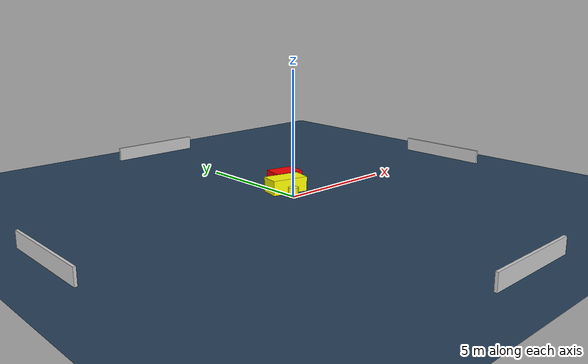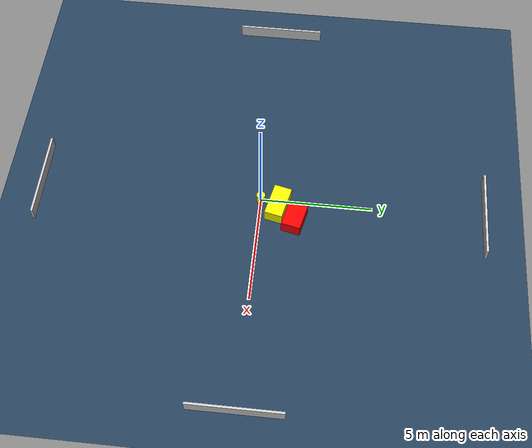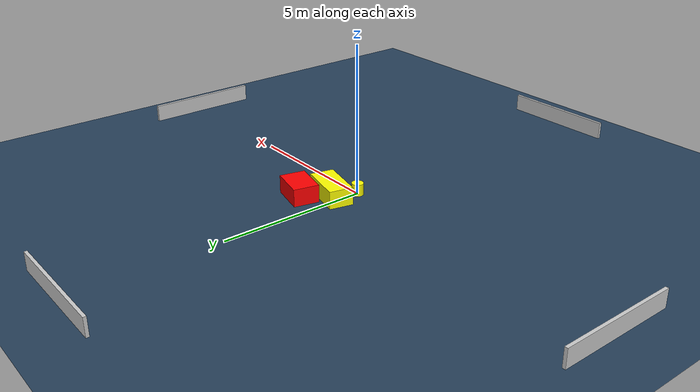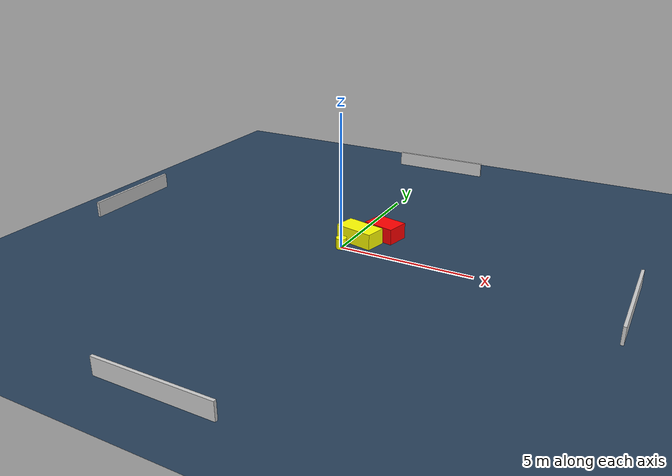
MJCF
<?xml version="1.0" ?>
<mujoco model="generated_environment">
  <option timestep="0.01" integrator="RK4" cone="elliptic"/>
  <default>
    <geom density="1"/>
  </default>
  <asset>
    <texture builtin="gradient" height="3072" name="skybox" rgb1="0.3 0.5 0.7" rgb2="0 0 0" type="skybox" width="512"/>
    <texture builtin="checker" height="300" name="groundplane" rgb1="0.2 0.3 0.4" rgb2="0.1 0.2 0.3" type="2d" width="300"/>
    <material name="groundplane" reflectance="0.2" texrepeat="5 5" texture="groundplane"/>
  </asset>
  <worldbody>
    <light dir="0 0 -1" directional="true" pos="0 0 1.5"/>
    <geom condim="3" friction="0.5 0.005 0.001" material="groundplane" name="floor" pos="0 0 0" size="0 0 0.05" type="plane"/>
    <body name="walls">
      <geom name="wall_1" condim="4" pos="-10.0 0.0 0.3" rgba="0.800000011920929 0.800000011920929 0.800000011920929 1.0" size="0.05 2.0 0.3" type="box"/>
      <geom name="wall_2" condim="4" pos="10.0 0.0 0.3" rgba="0.800000011920929 0.800000011920929 0.800000011920929 1.0" size="0.05 2.0 0.3" type="box"/>
      <geom name="wall_3" condim="4" pos="0.0 -10.0 0.3" rgba="0.800000011920929 0.800000011920929 0.800000011920929 1.0" size="2.0 0.05 0.3" type="box"/>
      <geom name="wall_4" condim="4" pos="0.0 10.0 0.3" rgba="0.800000011920929 0.800000011920929 0.800000011920929 1.0" size="2.0 0.05 0.3" type="box"/>
    </body>
    <body name="robot">
      <joint name="joint_x" type="slide" pos="0 0 0" axis="1 0 0"/>
      <joint name="joint_y" type="slide" pos="0 0 0" axis="0 1 0"/>
      <geom name="robot" type="cylinder" pos="0.0 0.0 0.2" size="0.2 0.2 0.0" mass="5.0" friction="1.0 0.005 0.0001" condim="4" rgba="1.0 1.0 0.0 1.0"/>
    </body>
    <body name="obstacle_1_movable">
      <geom name="obstacle_1_movable" condim="4" pos="0.33797738101071373 0.8104669342960492 0.3" euler="0 0 77.16786855934367" friction="0.0 0.005 0.001" rgba="1.0 1.0 0.0 1.0" size="0.40136107623907447 0.7601208832026278 0.3" type="box" mass="0.1"/>
      <joint type="free"/>
    </body>
    <body name="obstacle_2_static">
      <geom name="obstacle_2_static" condim="4" pos="1.0044288672352049 1.592281918112694 0.3" euler="0 0 256.8097135681134" friction="0.0 0.005 0.001" rgba="1.0 0.0 0.0 1.0" size="0.43070311856778715 0.6029448619422217 0.3" type="box"/>
    </body>
  </worldbody>
  <actuator>
    <motor name="actuator_x" joint="joint_x" gear="1" ctrlrange="-1 1"/>
    <motor name="actuator_y" joint="joint_y" gear="1" ctrlrange="-1 1"/>
  </actuator>
</mujoco>
